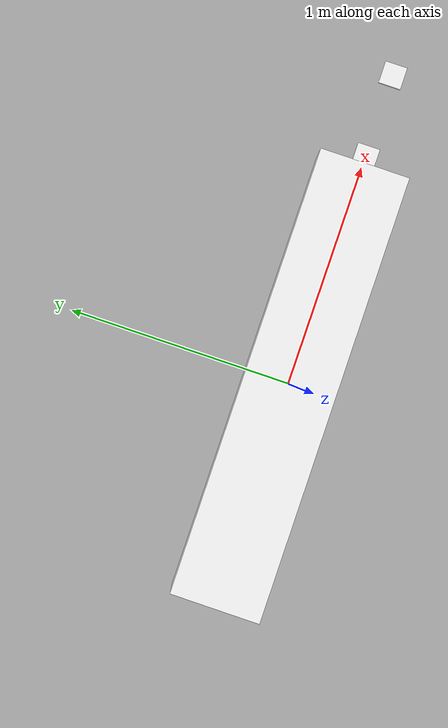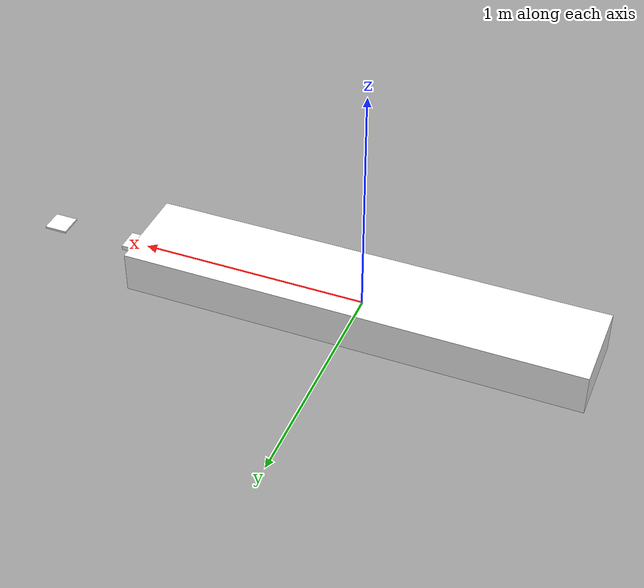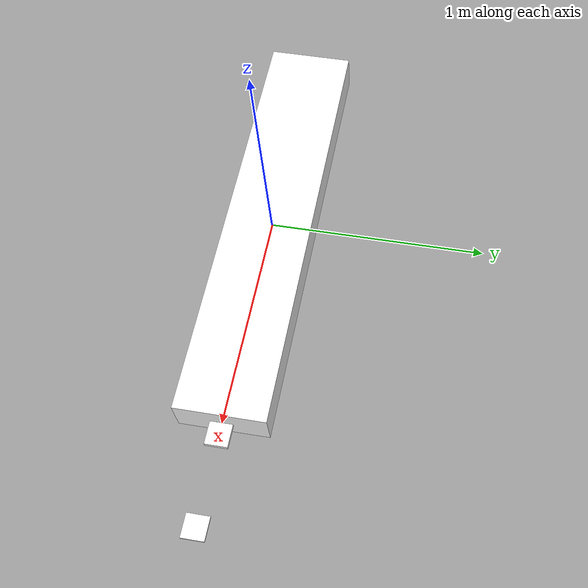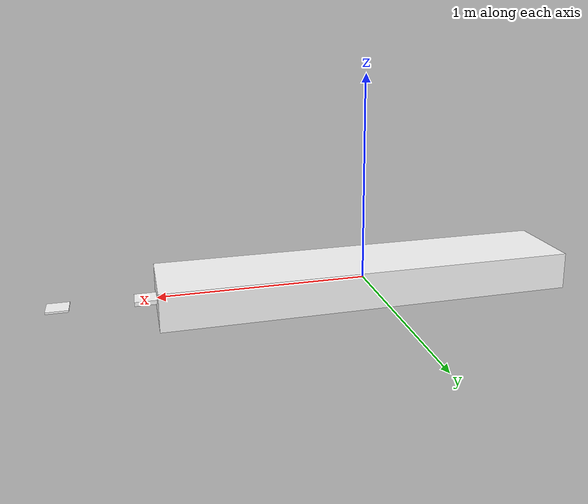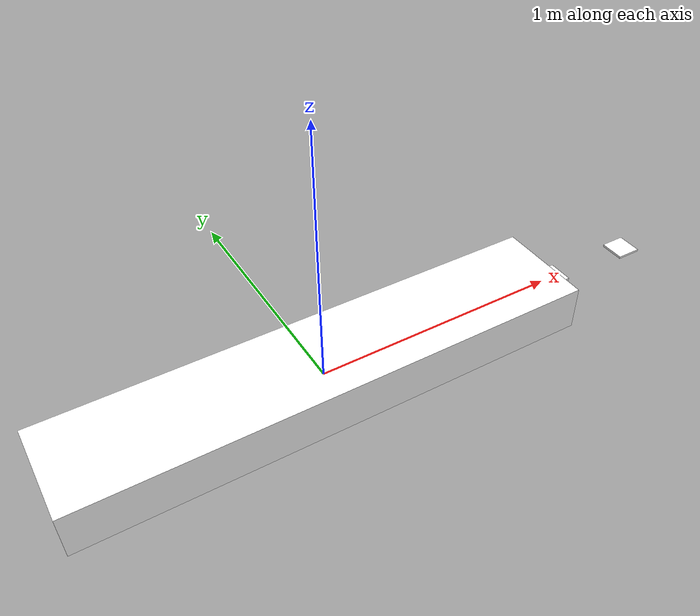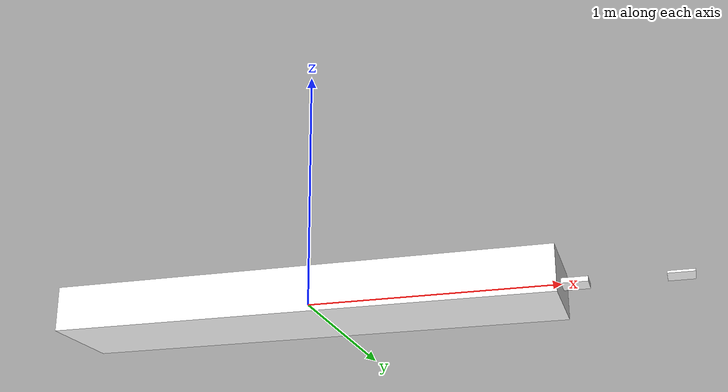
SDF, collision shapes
<?xml version="1.0"?>
<sdf version="1.9" xmlns:experimental="http://sdformat.org/schemas/experimental">
  <model name="tethys_0">
    <enable_wind>true</enable_wind>
    <include merge="true">

      <pose degrees="true">0 0 0 0 0 0</pose>
      <uri>tethys</uri>

      <plugin filename="gz-sim-joint-position-controller-system"
        name="gz::sim::systems::JointPositionController">
        <joint_name>horizontal_fins_joint</joint_name>
        <p_gain>0.1</p_gain>
      </plugin>

      <plugin filename="gz-sim-joint-position-controller-system"
        name="gz::sim::systems::JointPositionController">
        <joint_name>vertical_fins_joint</joint_name>
        <p_gain>0.1</p_gain>
      </plugin>

      <plugin filename="gz-sim-thruster-system"
        name="gz::sim::systems::Thruster">
        <namespace>tethys_0</namespace>
        <joint_name>propeller_joint</joint_name>
        <thrust_coefficient>0.004422</thrust_coefficient>
        <fluid_density>1025</fluid_density>
        <propeller_diameter>0.2</propeller_diameter>
      </plugin>

      <plugin filename="gz-sim-lift-drag-system"
        name="gz::sim::systems::LiftDrag">
        <air_density>1025</air_density>
        <cla>4.13</cla>
        <cla_stall>-1.1</cla_stall>
        <cda>0.2</cda>
        <cda_stall>0.03</cda_stall>
        <alpha_stall>0.17</alpha_stall>
        <a0>0</a0>
        <area>0.0244</area>
        <upward>0 1 0</upward>
        <forward>-1 0 0</forward>
        <link_name>vertical_fins</link_name>
        <cp>0 0 0</cp>
      </plugin>

      <plugin filename="gz-sim-lift-drag-system"
        name="gz::sim::systems::LiftDrag">
        <air_density>1025</air_density>
        <cla>4.13</cla>
        <cla_stall>-1.1</cla_stall>
        <cda>0.2</cda>
        <cda_stall>0.03</cda_stall>
        <alpha_stall>0.17</alpha_stall>
        <a0>0</a0>
        <area>0.0244</area>
        <upward>0 0 1</upward>
        <forward>-1 0 0</forward>
        <link_name>horizontal_fins</link_name>
        <cp>0 0 0</cp>
      </plugin>

      <plugin filename="HydrodynamicsPlugin"
        name="tethys::HydrodynamicsPlugin">
        <link_name>base_link</link_name>
        <enable_coriolis>false</enable_coriolis>
        <xDotU>-4.876161</xDotU>
        <yDotV>-126.324739</yDotV>
        <zDotW>-126.324739</zDotW>
        <kDotP>0</kDotP>
        <mDotQ>-33.46</mDotQ>
        <nDotR>-33.46</nDotR>
        <xUU>-6.2282</xUU>
        <xU>0</xU>
        <yVV>-601.27</yVV>
        <yV>0</yV>
        <zWW>-601.27</zWW>
        <zW>0</zW>
        <kPP>-0.1916</kPP>
        <kP>0</kP>
        <mQQ>-632.698957</mQQ>
        <mQ>0</mQ>
        <nRR>-632.698957</nRR>
        <nR>0</nR>
      </plugin>

      <plugin filename="NavigationPlugin"
        name="tethys::NavigationPlugin">
        <world_name>empty_environment</world_name>
        <namespace>tethys_0</namespace>

        <!-- GOAL -->
        <goal_x>-6.10</goal_x>
        <goal_y>45.51</goal_y>
        <goal_z>-67.25</goal_z>

        <!-- CONTROLLO -->
        <gain_steer>1.6246</gain_steer>
        <gain_pitch>0.3000</gain_pitch>
        <max_fin_angle>0.15</max_fin_angle>
        <radius_arrived>4.0</radius_arrived>
        <max_iterations>300000</max_iterations>

        <!-- LIDAR -->
        <r_max>40.0</r_max>
        <r_min>2.5</r_min>
        <r_active>30.00</r_active>

        <!-- VFH -->
        <valley_threshold>34.4820</valley_threshold>
        <smooth_l>4</smooth_l>
        <safety_window>1</safety_window>
        <grid_decay>0.9657</grid_decay>
        <magnitude_a>12.8910</magnitude_a>
      </plugin>

      <experimental:params>
        <sensor element_id="base_link::contact_sensor" action="modify">
          <topic>/tethys_0/contact</topic>
        </sensor>
        <sensor element_id="lidar_link::gpu_lidar" action="modify">
          <topic>/tethys_0/lidar</topic>
        </sensor>
      </experimental:params>

    </include>
  </model>
</sdf>

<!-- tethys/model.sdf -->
<sdf version="1.6">
  <model name="tethys">
    <enable_wind>true</enable_wind>

    <link name="base_link">
      <inertial>

        <pose>0.0 0 0 0 0 0 </pose>

        <mass>147.8671</mass>

        <inertia>
          <ixx>3.000000</ixx>
          <ixy>0</ixy>
          <ixz>0</ixz>
          <iyy>41.980233</iyy>
          <iyz>0</iyz>
          <izz>41.980233</izz>

        </inertia>
      </inertial>

      <collision name="main_body_buoyancy"><pose>0 0 0.007 0 0 0 </pose><geometry><box><size>2.0 0.4 0.18032573170731706 </size></box></geometry></collision>

      <sensor name="contact_sensor" type="contact">
        <contact>
          <collision>main_body_buoyancy</collision>
        </contact>
        <always_on>true</always_on>
        <update_rate>100</update_rate>
        <topic>/tethys/contact</topic>
      </sensor>

      <visual name="visual">
        <geometry>
          <mesh>
            <uri>meshes/tethys.dae</uri>
            <submesh>
              <name>Body</name>
              <center>false</center>
            </submesh>
          </mesh>
        </geometry>
        <material>
          <diffuse>1.0 1.0 1.0 1.0</diffuse>
          <specular>1.0 1.0 1.0 1.0</specular>
          <pbr>
            <metal>
              <albedo_map>materials/textures/Tethys_Albedo.png</albedo_map>
              <normal_map>materials/textures/Tethys_Normal.png</normal_map>
              <metalness_map>materials/textures/Tethys_Metalness.png</metalness_map>
              <roughness_map>materials/textures/Tethys_Roughness.png</roughness_map>
            </metal>
          </pbr>
          <script>
            <uri>materials/scripts/</uri>
            <uri>materials/textures/</uri>
            <name>tethys/Tethys_Diffuse</name>
          </script>
        </material>
      </visual>
    </link>

    <link name="horizontal_fins">
      <pose>1.05 0 0 0 0 0</pose>
      <inertial>
        <mass>0.2</mass>
        <inertia>
          <ixx>0.0007924568755</ixx>
          <ixy>-0.0000000002674</ixy>
          <ixz>0.0003978158176</ixz>
          <iyy>0.0010546736475</iyy>
          <iyz>-0.0000000006729</iyz>
          <izz>0.0002633558262</izz>
        </inertia>
      </inertial>

      <collision name="horizontal_fins_buoyancy"><geometry><box><size>0.1 0.1 0.019512195121951216 </size></box></geometry></collision>

      <visual name="visual">
        <pose>-1.05 0 0 0 0 0</pose>
        <geometry>
          <mesh>
            <uri>meshes/tethys.dae</uri>
            <submesh>
              <name>Fins_Horizontal</name>
              <center>false</center>
            </submesh>
          </mesh>
        </geometry>
        <material>
          <diffuse>1.0 1.0 1.0</diffuse>
          <specular>1.0 1.0 1.0</specular>
          <pbr>
            <metal>
              <albedo_map>materials/textures/Tethys_Albedo.png</albedo_map>
              <normal_map>materials/textures/Tethys_Normal.png</normal_map>
              <metalness_map>materials/textures/Tethys_Metalness.png</metalness_map>
              <roughness_map>materials/textures/Tethys_Roughness.png</roughness_map>
            </metal>
          </pbr>
          <script>
            <uri>materials/scripts/</uri>
            <uri>materials/textures/</uri>
            <name>tethys/Tethys_Diffuse</name>
          </script>
        </material>
      </visual>
    </link>

    <link name="vertical_fins">
      <pose>1.05 0 0 0 0 0</pose>
      <inertial>
        <mass>0.2</mass>
        <inertia>
          <ixx>0.0007924568755</ixx>
          <ixy>-0.0000000002674</ixy>
          <ixz>0.0003978158176</ixz>
          <iyy>0.0010546736475</iyy>
          <iyz>-0.0000000006729</iyz>
          <izz>0.0002633558262</izz>
        </inertia>
      </inertial>

      <collision name="vertical_fin_buoyancy"><geometry><box><size>0.1 0.1 0.019512195121951216 </size></box></geometry></collision>

      <visual name="visual">
        <pose>-1.05 0 0 0 0 0</pose>
        <geometry>
          <mesh>
            <uri>meshes/tethys.dae</uri>
            <submesh>
              <name>Fins_vertical</name>
              <center>false</center>
            </submesh>
          </mesh>
        </geometry>
        <material>
          <diffuse>1.0 1.0 1.0</diffuse>
          <specular>1.0 1.0 1.0</specular>
          <pbr>
            <metal>
              <albedo_map>materials/textures/Tethys_Albedo.png</albedo_map>
              <normal_map>materials/textures/Tethys_Normal.png</normal_map>
              <metalness_map>materials/textures/Tethys_Metalness.png</metalness_map>
              <roughness_map>materials/textures/Tethys_Roughness.png</roughness_map>
            </metal>
          </pbr>
          <script>
            <uri>materials/scripts/</uri>
            <uri>materials/textures/</uri>
            <name>tethys/Tethys_Diffuse</name>
          </script>
        </material>
      </visual>
    </link>

    <link name="propeller">
      <pose>1.43162 0 0 0 0 0</pose>
      <inertial>
        <pose>0 0 0 0 0 0</pose>
        <mass>0.09</mass>
        <inertia>
          <ixx>0.000143971303</ixx>
          <ixy>0.000000000008</ixy>
          <ixz>-0.000000000224</ixz>
          <iyy>0.000140915448</iyy>
          <iyz>-0.000025236433</iyz>
          <izz>0.000033571862</izz>
        </inertia>
      </inertial>

      <collision name="propeller_buoyancy"><geometry><box><size>0.1 0.1 0.008780487804878046 </size></box></geometry></collision>

      <visual name="visual">
        <pose>-1.43162 0 0 0 0 0</pose>
        <geometry>
          <mesh>
            <uri>meshes/tethys.dae</uri>
            <submesh>
              <name>Prop</name>
              <center>false</center>
            </submesh>
          </mesh>
        </geometry>
        <material>
          <diffuse>1.0 1.0 1.0</diffuse>
          <specular>1.0 1.0 1.0</specular>
          <pbr>
            <metal>
              <albedo_map>materials/textures/Tethys_Albedo.png</albedo_map>
              <normal_map>materials/textures/Tethys_Normal.png</normal_map>
              <metalness_map>materials/textures/Tethys_Metalness.png</metalness_map>
              <roughness_map>materials/textures/Tethys_Roughness.png</roughness_map>
            </metal>
          </pbr>
          <script>
            <uri>materials/scripts/</uri>
            <uri>materials/textures/</uri>
            <name>tethys/Tethys_Diffuse</name>
          </script>
        </material>
      </visual>
    </link>

    <joint name="horizontal_fins_joint" type="revolute">
      <pose>0 0 0 0 0 0</pose>
      <parent>base_link</parent>
      <child>horizontal_fins</child>
      <axis>
        <xyz>0 1 0</xyz>
        <limit>
          <lower>-0.261799</lower>
          <upper>0.261799</upper>
          <effort>-1</effort>
          <velocity>-1</velocity>
        </limit>
      </axis>
    </joint>

    <joint name="vertical_fins_joint" type="revolute">
      <pose degrees="true">0 0 0   180 0 0</pose>
      <parent>base_link</parent>
      <child>vertical_fins</child>
      <axis>
        <xyz>0 0 1</xyz>
        <limit>
          <lower>-0.261799</lower>
          <upper>0.261799</upper>
          <effort>-1</effort>
          <velocity>-1</velocity>
        </limit>
      </axis>
    </joint>

    <joint name="propeller_joint" type="revolute">
      <pose degrees="true">0 0 0   0 0 0</pose>
      <parent>base_link</parent>
      <child>propeller</child>
      <axis>
        <xyz>1 0 0</xyz>
        <limit>
          <lower>-1e+12</lower>
          <upper>1e+12</upper>
          <effort>1e6</effort>
          <velocity>-1</velocity>
        </limit>
      </axis>
    </joint>

    <link name="lidar_link">
       <pose degrees="true">0 0 0 0 0 0</pose>

        <inertial>
          <mass>0.1</mass>
          <inertia>
            <ixx>0.0001</ixx><ixy>0</ixy><ixz>0</ixz>
            <iyy>0.0001</iyy><iyz>0</iyz>
            <izz>0.0001</izz>
          </inertia>
        </inertial>

        <collision name="lidar_buoyancy"><geometry><box><size>0.1 0.1 0.009756097560975608 </size></box></geometry></collision>

      <sensor name="gpu_lidar" type="gpu_lidar">
        <pose degrees="true">0 0 0   0 0 180</pose>
        <topic>/tethys/lidar</topic>
        <update_rate>10</update_rate>
        <always_on>true</always_on>
        <visualize>false</visualize>
        <lidar>
          <scan>
            <horizontal>
              <samples>36</samples>
              <resolution>1</resolution>
              <min_angle>-1.5708</min_angle>
              <max_angle>1.5708</max_angle>
            </horizontal>
            <vertical>
              <samples>36</samples>
              <resolution>1</resolution>
              <min_angle>-1.5708</min_angle>
              <max_angle>1.5708</max_angle>
            </vertical>
          </scan>
          <range>
            <min>2.5</min>
            <max>50.0</max>
            <resolution>0.01</resolution>
          </range>
          <noise>
            <type>gaussian</type>
            <mean>0.0</mean>
            <stddev>0.01</stddev>
          </noise>
        </lidar>
      </sensor>
    </link>

    <joint name="lidar_joint" type="fixed">
      <parent>base_link</parent>
      <child>lidar_link</child>
    </joint>

    </model>
</sdf>
